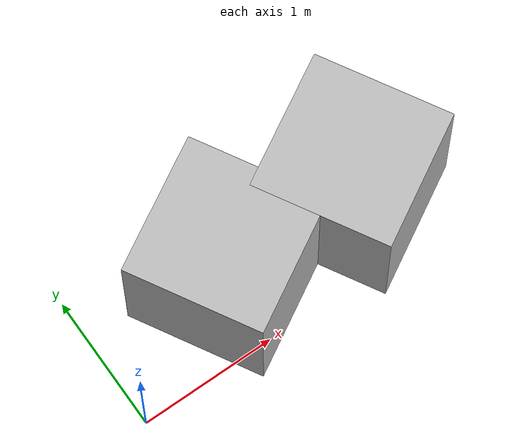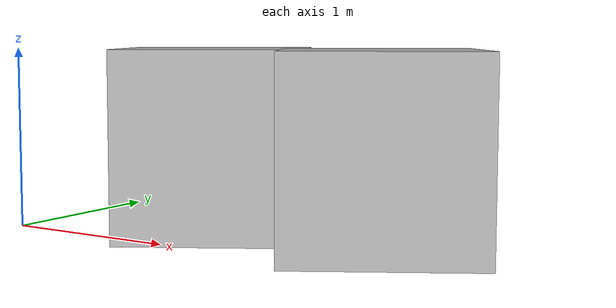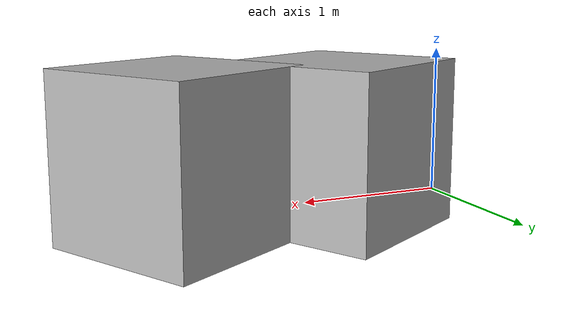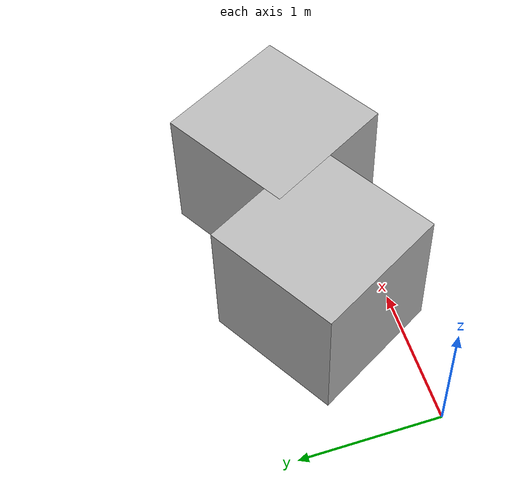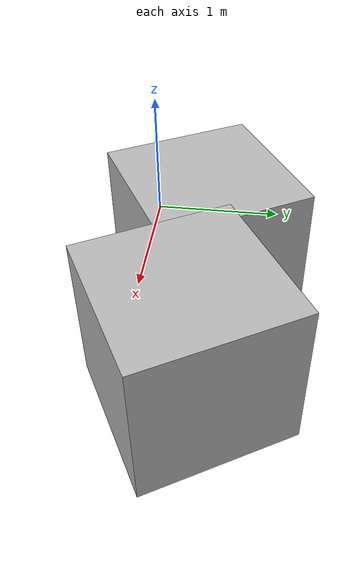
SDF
<?xml version='1.0'?>
<sdf version='1.6'>
		<model name="testlinka">
			<self_collide>true</self_collide>
			<pose>0.0 0.0 0.0 0.0 0.0 0.0</pose>
			<!-- Start of parts of the pmodel testlinka -->
				<!-- Start of declarations for part "testlinka::TLC" -->
					<!-- Start of parts of part "testlinka::TLC" -->
					<!-- End of parts of part "testlinka::TLC" -->

					<!-- Start of links of part "testlinka::TLC" -->
					<!-- link full name is testlinka::TLC::linkC -->
					<link name="1-linkC">
							<pose>2.0 0.5 0.5 1.5707999467849731 3.141590118408203 -1.0471999645233154</pose>
							<inertial>
								<pose>0.0 0.0 0.0 0.0 0.0 0.0</pose>
								<inertia>
									<ixx>1.0</ixx>
									<ixy>0.0</ixy>
									<ixz>0.0</ixz>
									<iyy>1.0</iyy>
									<iyz>0.0</iyz>
									<izz>1.0</izz>
								</inertia>
								<mass>1.0</mass>
							</inertial>
							<!-- body full name is testlinka::TLC::linkC::bodyC -->
							<collision name="1--bodyC">
								<laser_retro>0.0</laser_retro>
								<pose>0.0 0.0 0.0 0.0 0.0 0.0</pose>
								<geometry>
									<box>
										<size>1.0 1.0 1.0</size>
									</box>
								</geometry>
								<surface>
									<bounce>
										<restitution_coefficient>0.0</restitution_coefficient>
										<threshold>100000.0</threshold>
									</bounce>
									<friction>
										<ode>
											<mu>1.0</mu>
											<mu2>1.0</mu2>
											<fdir1>0.0 0.0 0.0</fdir1>
											<slip1>0.0</slip1>
											<slip2>0.0</slip2>
										</ode>
										<torsional>
											<coefficient>1.0</coefficient>
											<surface_radius>0.0</surface_radius>
										</torsional>
									</friction>
								</surface>
							</collision>
							<visual name="1--bodyC">
								<laser_retro>0.0</laser_retro>
								<pose>0.0 0.0 0.0 0.0 0.0 0.0</pose>
								<geometry>
									<box>
										<size>1.0 1.0 1.0</size>
									</box>
								</geometry>
								<surface>
									<bounce>
										<restitution_coefficient>0.0</restitution_coefficient>
										<threshold>100000.0</threshold>
									</bounce>
									<friction>
										<ode>
											<mu>1.0</mu>
											<mu2>1.0</mu2>
											<fdir1>0.0 0.0 0.0</fdir1>
											<slip1>0.0</slip1>
											<slip2>0.0</slip2>
										</ode>
										<torsional>
											<coefficient>1.0</coefficient>
											<surface_radius>0.0</surface_radius>
										</torsional>
									</friction>
								</surface>
							</visual>
					</link>
					<!-- End of links of part "testlinka::TLC" -->

					<!-- Start of joints of part "testlinka::TLC" -->
					<!-- End of joints of part "testlinka::TLC" -->

					<!-- Start of fixed connections of part "testlinka::TLC" -->
					<!-- fixed joint full name is testlinka::TLC::linkC::fixedJoint::testlinka::linkA from testlinka::TLC::linkC to testlinka::linkA -->
					<joint name="3-fixedJoint" type="fixed">
						<parent>1-linkC</parent>
						<child>2-linkA</child>
						<axis><xyz>0 0 1</xyz></axis>
					</joint>

					<!-- End of fixed connections of part "testlinka::TLC" -->
				<!-- End of declarations for part "testlinka::TLC" -->
			<!-- End of parts of the pmodel testlinka -->

			<!-- Start of links of the pmodel testlinka -->
			<!-- link full name is testlinka::linkA -->
			<link name="2-linkA">
					<pose>1.0 0.5 0.5 1.5707999467849731 3.141590118408203 -1.0471999645233154</pose>
					<inertial>
						<pose>0.0 0.0 0.0 0.0 0.0 0.0</pose>
						<inertia>
							<ixx>1.0</ixx>
							<ixy>0.0</ixy>
							<ixz>0.0</ixz>
							<iyy>1.0</iyy>
							<iyz>0.0</iyz>
							<izz>1.0</izz>
						</inertia>
						<mass>1.0</mass>
					</inertial>
					<!-- body full name is testlinka::linkA::bodyA -->
					<collision name="2--bodyA">
						<laser_retro>0.0</laser_retro>
						<pose>0.0 0.0 0.0 0.0 0.0 0.0</pose>
						<geometry>
							<box>
								<size>1.0 1.0 1.0</size>
							</box>
						</geometry>
						<surface>
							<bounce>
								<restitution_coefficient>0.0</restitution_coefficient>
								<threshold>100000.0</threshold>
							</bounce>
							<friction>
								<ode>
									<mu>1.0</mu>
									<mu2>1.0</mu2>
									<fdir1>0.0 0.0 0.0</fdir1>
									<slip1>0.0</slip1>
									<slip2>0.0</slip2>
								</ode>
								<torsional>
									<coefficient>1.0</coefficient>
									<surface_radius>0.0</surface_radius>
								</torsional>
							</friction>
						</surface>
					</collision>
					<visual name="2--bodyA">
						<laser_retro>0.0</laser_retro>
						<pose>0.0 0.0 0.0 0.0 0.0 0.0</pose>
						<geometry>
							<box>
								<size>1.0 1.0 1.0</size>
							</box>
						</geometry>
						<surface>
							<bounce>
								<restitution_coefficient>0.0</restitution_coefficient>
								<threshold>100000.0</threshold>
							</bounce>
							<friction>
								<ode>
									<mu>1.0</mu>
									<mu2>1.0</mu2>
									<fdir1>0.0 0.0 0.0</fdir1>
									<slip1>0.0</slip1>
									<slip2>0.0</slip2>
								</ode>
								<torsional>
									<coefficient>1.0</coefficient>
									<surface_radius>0.0</surface_radius>
								</torsional>
							</friction>
						</surface>
					</visual>
			</link>
			<!-- End of links of the pmodel testlinka -->

			<!-- Start of joints of the pmodel testlinka -->
			<!-- End of joints of the pmodel testlinka -->

			<!-- Start of fixed connections of the pmodel testlinka -->
			<!-- End of fixed connections of the pmodel testlinka -->
		</model>
</sdf>
